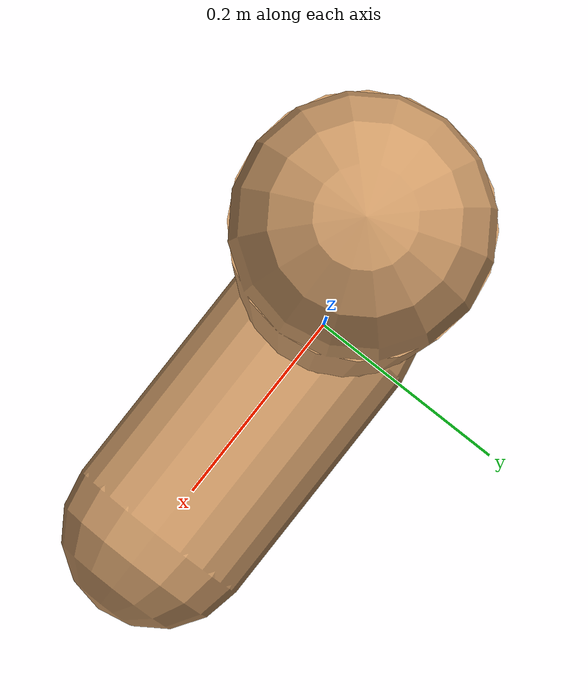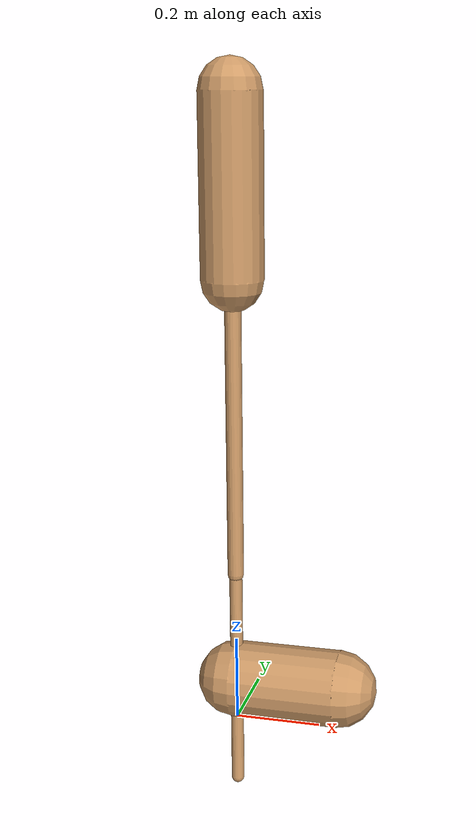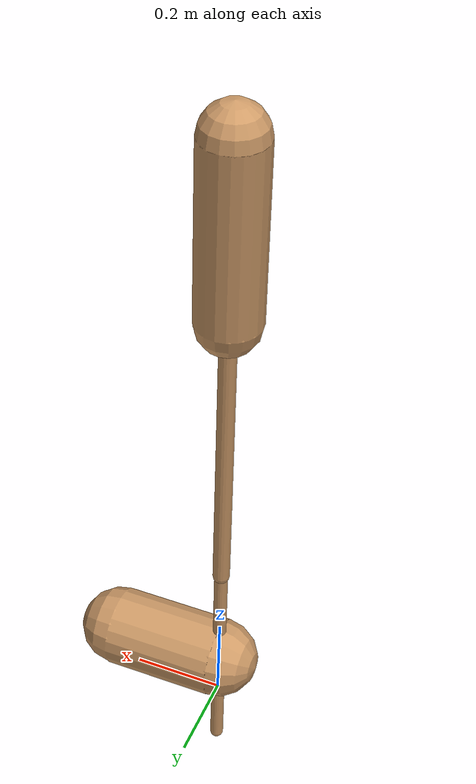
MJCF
<mujoco model="walker2d">
  <compiler angle="degree" coordinate="global" inertiafromgeom="true" />
  <default>
    <joint armature="0.01" damping=".1" limited="true" />
    <geom conaffinity="0" condim="3" contype="1" density="1000" friction="0.8 .1 .1" rgba="0.8 0.6 .4 1" />
  </default>
  <option integrator="RK4" timestep="0.002" />
  <worldbody>

    <body name="torso" pos="0 0 0.49718659397955794">
      <joint armature="0" axis="1 0 0" damping="0" limited="false" name="ignorex" pos="0 0 0" stiffness="0" type="slide" />
      <joint armature="0" axis="0 0 1" damping="0" limited="false" name="ignorez" pos="0 0 0" ref="1.25" stiffness="0" type="slide" />
      <joint armature="0" axis="0 1 0" damping="0" limited="false" name="ignorey" pos="0 0 0" stiffness="0" type="hinge" />
      <geom fromto="0 0 1.45 0 0 1.05" name="torso_geom" size="0.07039408636358022" type="capsule" />
      <body name="thigh">
        <joint axis="0 -1 0" name="thigh_joint" pos="0 0 1.05" range="-150 0" type="hinge" />
        <geom fromto="0.0 0.0 1.05 0.0 0.0 0.36449056074652514" name="thigh_geom" size="0.0187053039104829" type="capsule" />
        <body name="leg" pos="0.0 0.0 -0.23550943925347484">
          <joint axis="0 -1 0" name="leg_joint" pos="0 0 0.6" range="-150 0" type="hinge" />
          <geom fromto="0.0 0.0 0.6 0.0 0.0 -0.1616771547260831" name="leg_geom" size="0.014964243128386321" type="capsule" />
          <body name="foot" pos="0.0 0.0 -0.2616771547260831">
            <joint axis="0 -1 0" name="foot_joint" pos="0 0 0.1" range="-45 45" type="hinge" />
            <geom fromto="-0.0 0.0 0.1 0.24554758862239257 0.0 0.1" name="foot_geom" size="0.09002832525021352" type="capsule" />
          </body>
        </body>
      </body>

      <body name="thigh_left">
        <joint axis="0 -1 0" name="thigh_left_joint" pos="0 0 1.05" range="-150 0" type="hinge" />
        <geom fromto="0.0 0.0 1.05 0.0 0.0 0.36449056074652514" name="thigh_left_geom" rgba=".7 .3 .6 1" size="0.0187053039104829" type="capsule" />
        <body name="leg_left" pos="0.0 0.0 -0.23550943925347484">
          <joint axis="0 -1 0" name="leg_left_joint" pos="0 0 0.6" range="-150 0" type="hinge" />
          <geom fromto="0.0 0.0 0.6 0.0 0.0 -0.1616771547260831" name="leg_left_geom" rgba=".7 .3 .6 1" size="0.014964243128386321" type="capsule" />
          <body name="foot_left" pos="0.0 0.0 -0.2616771547260831">
            <joint axis="0 -1 0" name="foot_left_joint" pos="0 0 0.1" range="-45 45" type="hinge" />
            <geom fromto="-0.0 0.0 0.1 0.24554758862239257 0.0 0.1" name="foot_left_geom" rgba=".7 .3 .6 1" size="0.09002832525021352" type="capsule" />
          </body>
        </body>
      </body>
    </body>
  </worldbody>
  <actuator>

    <motor ctrllimited="true" ctrlrange="-1.0 1.0" gear="100" joint="thigh_joint" />
    <motor ctrllimited="true" ctrlrange="-1.0 1.0" gear="100" joint="leg_joint" />
    <motor ctrllimited="true" ctrlrange="-1.0 1.0" gear="100" joint="foot_joint" />
    <motor ctrllimited="true" ctrlrange="-1.0 1.0" gear="100" joint="thigh_left_joint" />
    <motor ctrllimited="true" ctrlrange="-1.0 1.0" gear="100" joint="leg_left_joint" />
    <motor ctrllimited="true" ctrlrange="-1.0 1.0" gear="100" joint="foot_left_joint" />

  </actuator>
</mujoco>
